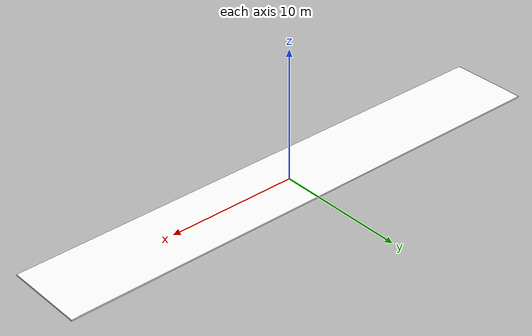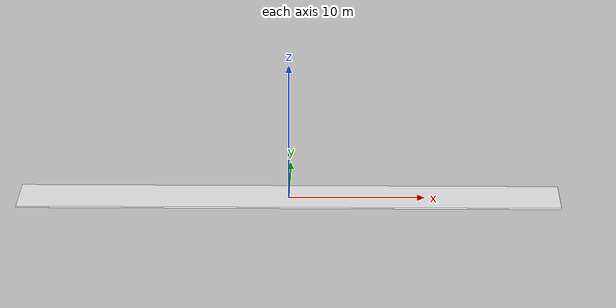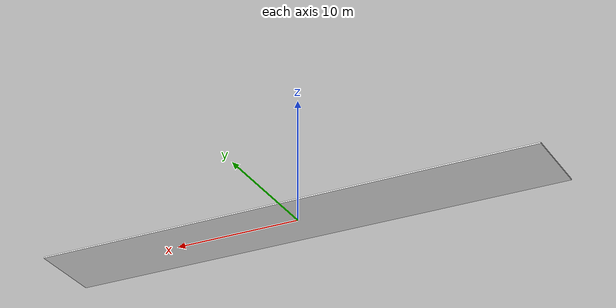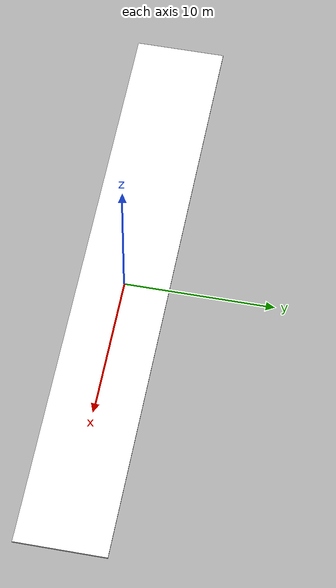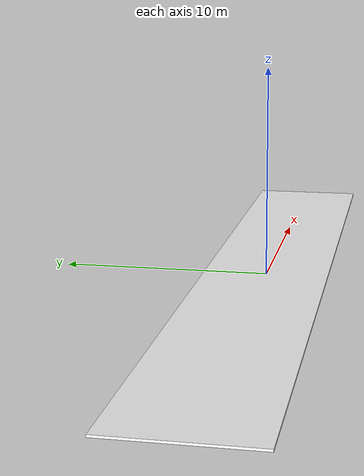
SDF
<?xml version="1.0" ?>
<sdf version="1.6">
  <model name="road">
    <static>true</static> <!-- The road doesn't move -->
    <link name="road_link">
      <collision name="road_collision">
        <geometry>
          <box>
            <size>40 6 0.1</size> <!-- Length 40m, Width 6m, Thickness 0.1m -->
          </box>
        </geometry>
        <surface>
          <friction>
            <ode>
              <mu>1.0</mu>
              <mu2>1.0</mu2>
            </ode>
          </friction>
        </surface>
      </collision>
      <visual name="road_visual">
        <geometry>
          <box>
            <size>40 6 0.1</size> <!-- Length 40m, Width 6m, Thickness 0.1m -->
          </box>
        </geometry>
        <material>
          <ambient>1 1 1 1</ambient>  <!-- White color -->
          <diffuse>1 1 1 1</diffuse>  <!-- White color -->
          <specular>1 1 1 1</specular> <!-- White color -->
        </material>
      </visual>
      <pose>0 0 0.05 0 0 0</pose> <!-- Position the road at height 0.05 -->
    </link>
  </model>
</sdf>
